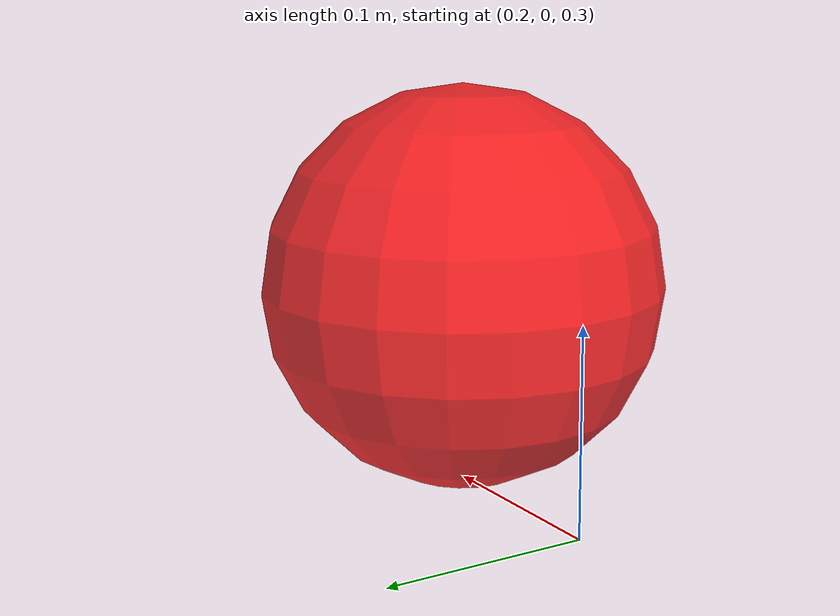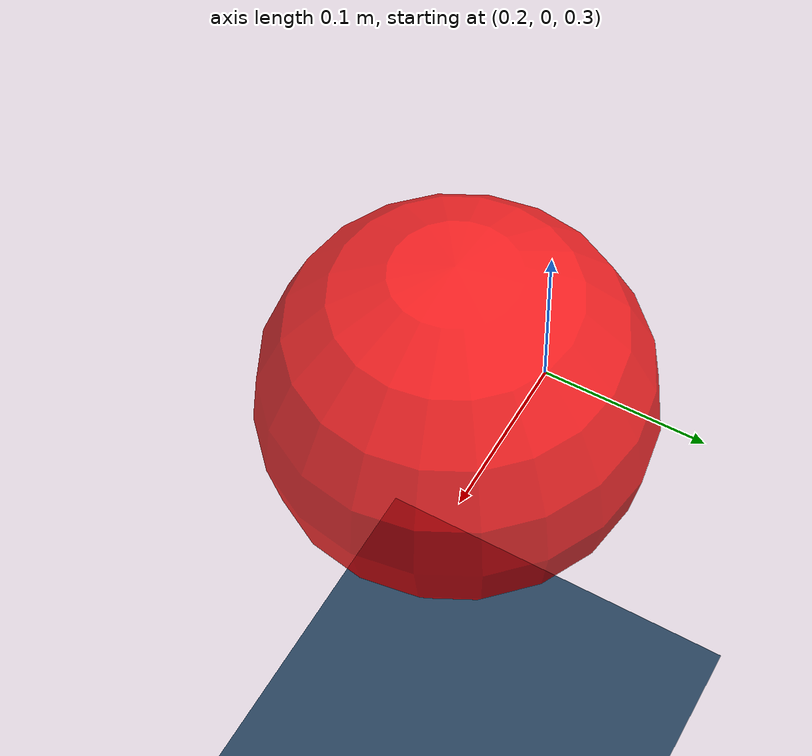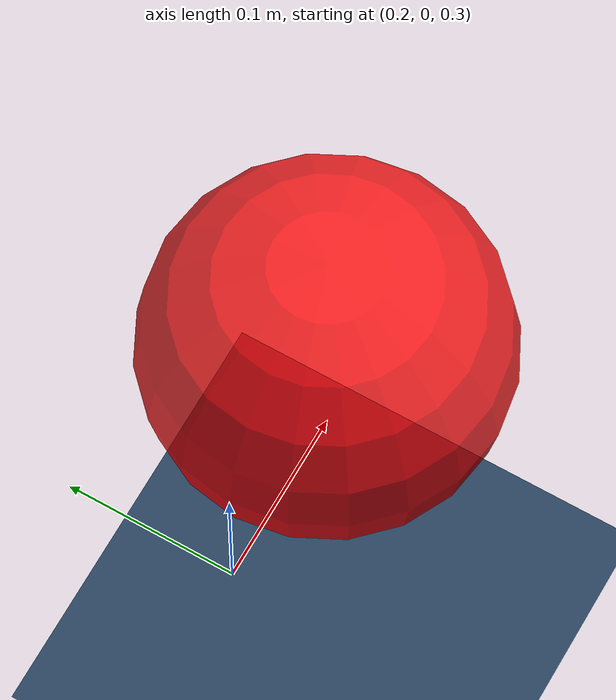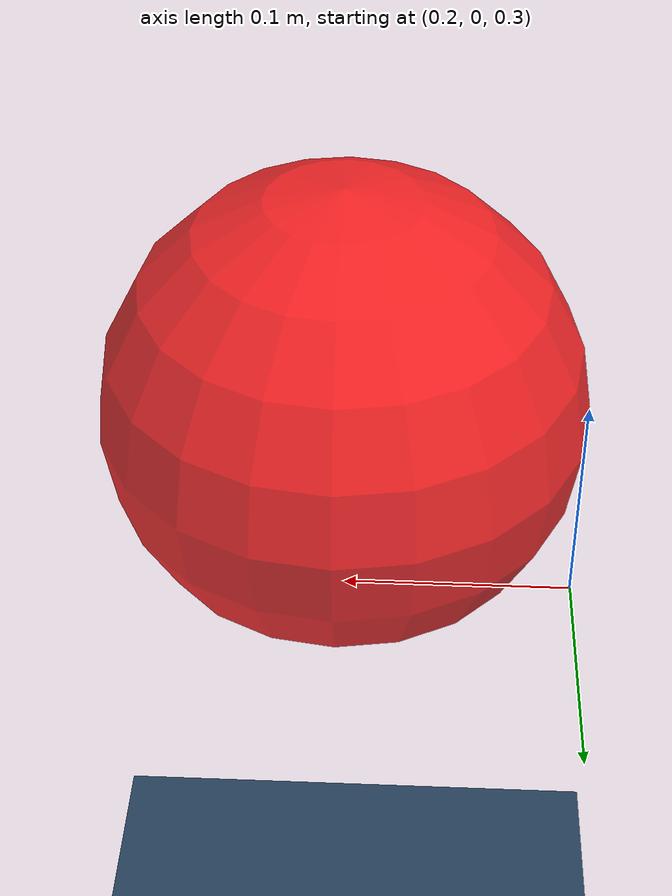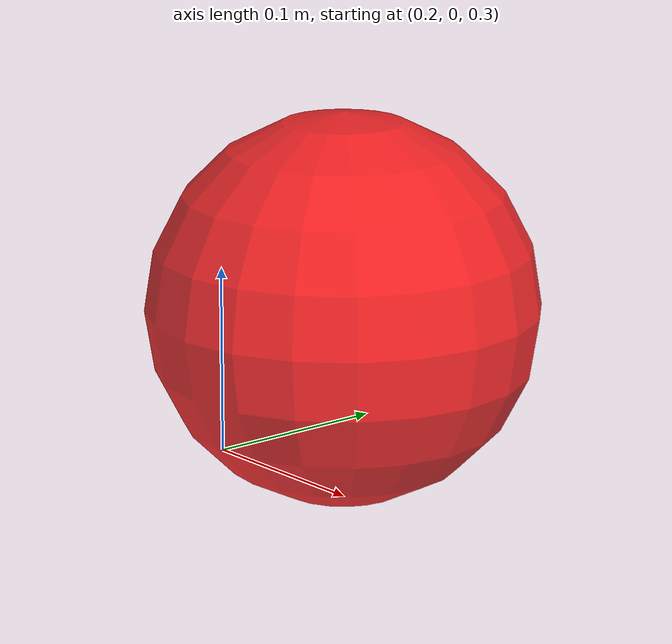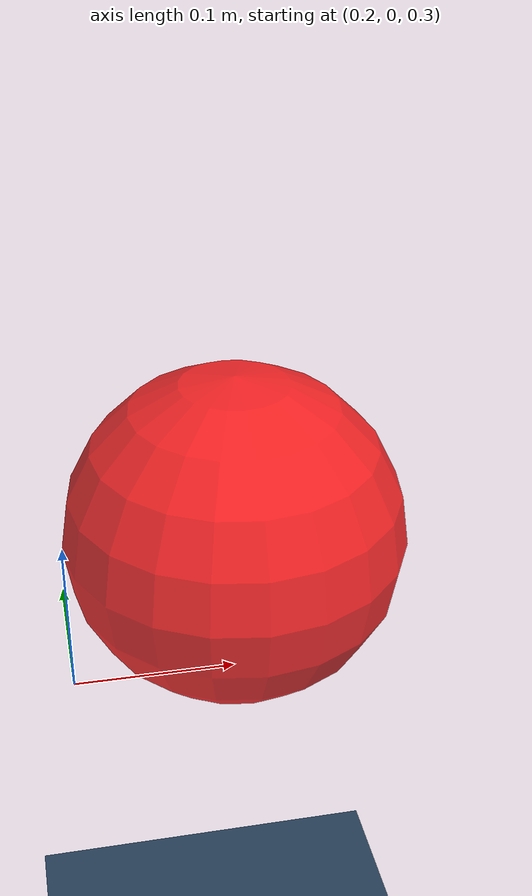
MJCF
<mujoco model="ground_arena">
  <statistic center="0.3 0 0.4" extent="1"/>

  <visual>
    <headlight diffuse="0.6 0.6 0.6" ambient="0.3 0.3 0.3" specular="0 0 0"/>
    <rgba haze="0.15 0.25 0.35 1"/>
    <global azimuth="120" elevation="-20"/>
  </visual>

  <asset>
    <texture type="skybox" builtin="gradient" rgb1="0.3 0.5 0.7" rgb2="0 0 0" width="512" height="3072"/>
    <texture type="2d" name="groundplane" builtin="checker" mark="edge" rgb1="0.2 0.3 0.4" rgb2="0.1 0.2 0.3"
      markrgb="0.8 0.8 0.8" width="300" height="300"/>
    <material name="groundplane" texture="groundplane" texuniform="true" texrepeat="5 5" reflectance="0.2"/>
  </asset>

  <worldbody>
    <geom name="floor" size="0 0 0.05" type="plane" material="groundplane"/>
    <light diffuse=".8 .8 .8" dir="0 -.15 -1" directional="false" pos="1 1 4.0" specular="0.3 0.3 0.3" castshadow="false"/>
    <light diffuse=".8 .8 .8" dir="0 -.15 -1" directional="false" pos="-3. -3. 4.0" specular="0.3 0.3 0.3" castshadow="false"/>
    <!-- front view -->
    <camera mode="fixed" name="frontview" pos="1.6 0.15 1.45" quat="0.56 0.43 0.43 0.56"/>
    <!-- bird view -->
    <camera mode="fixed" name="birdview" pos="-0.2 0.15 3.0" quat="0.7071 0 0 0.7071"/>
    <!-- agent view -->
    <camera mode="fixed" name="agentview" pos="0.8 0.15 1.65" quat="0.653 0.271 0.271 0.653"/>

    <!-- Add centroid marker -->
    <body name="centroid_marker" pos="0.3 0 0.4"> <!-- 예시 위치, 실제 centroid 위치로 변경 필요 -->
      <geom type="sphere" size="0.1" rgba="1 0 0 0.8"/>
    </body>
  </worldbody>
</mujoco>
